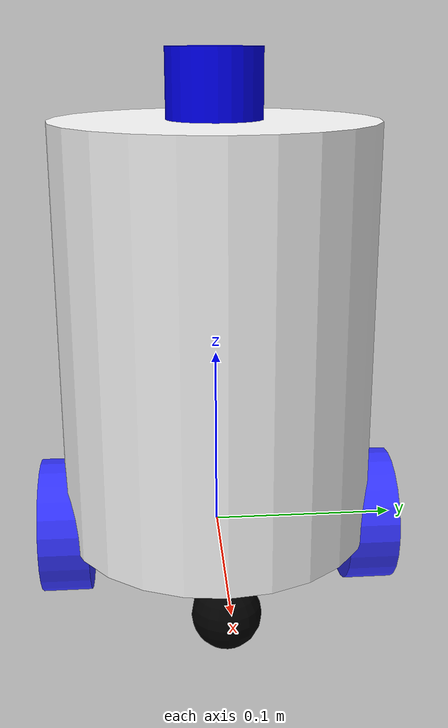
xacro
<?xml version="1.0"?>
<robot xmlns:xacro="http://www.ros.org/wiki/xacro" >

    <xacro:include filename="inertial_macros.xacro"/>

    <material name="white">
        <color rgba="1 1 1 1" />
    </material>

    <material name="orange">
        <color rgba="1 0.3 0.1 1"/>
    </material>

    <material name="blue">
        <color rgba="0.2 0.2 1 1"/>
    </material>

    <material name="black">
        <color rgba="0 0 0 1"/>
    </material>

    <link name="base_link">

    </link>

    <joint name="container_joint" type="fixed">
        <parent link="base_link"/>
        <child link="container"/>
        <origin xyz="-0.015 0 0.037"/>
    </joint>

    <link name="container">
        <visual>
            <origin xyz="0.015 0 0.075"/>
            <geometry>
                <cylinder radius="0.085" length="0.225"/>
            </geometry>
            <material name="white"/>
        </visual>
        <collision>
            <origin xyz="0.15 0 0.075"/>
            <geometry>
                <cylinder radius="0.085" length="0.225"/>
            </geometry>
        </collision>
        <xacro:inertial_box mass="0.5" x="0.3" y="0.3" z="0.15">
            <origin xyz="0.15 0 0.075" rpy="0 0 0"/>
        </xacro:inertial_box>
    </link>

    <!--lidar-->

    <joint name="lidarr_joint" type="fixed">
        <parent link="base_link"/>
        <child link="lidarr"/>
        <origin xyz="0 0 0.225" rpy="0 0 0"/>
    </joint>
        <link name="lidarr">
        <visual>
            <geometry>
                <cylinder radius="0.025" length="0.07"/>
            </geometry>
            <material name="blue">
                <color rgba="0.0 0.0 1.0 1.0"/>
            </material>
        </visual>
        <collision>
            <geometry>
                <cylinder radius="0.025" length="0.07"/>
            </geometry>
        </collision>
        <inertial>
            <mass value="0.2"/>
            <origin xyz="0 0 0.225" />
            <inertia ixx="0.01" ixy="0.0" ixz="0.0" iyy="0.01" iyz="0.0" izz="0.01"/>
        </inertial>
    </link>

    <!-- LEFT WHEEL LINK -->

    <joint name="left_wheel_joint" type="continuous">
        <parent link="base_link"/>
        <child link="left_wheel"/>
        <origin xyz="0 0.085 0" rpy="-${pi/2} 0 0" />
        <axis xyz="0 0 1"/>
    </joint>

    <link name="left_wheel">
        <visual>
            <geometry>
                <cylinder radius="0.037" length="0.027"/>
            </geometry>
            <material name="blue"/>
        </visual>
        <collision>
            <geometry>
                <cylinder radius="0.037" length="0.027"/>
            </geometry>
        </collision>
        <xacro:inertial_cylinder mass="0.01" length="0.027" radius="0.037">
            <origin xyz="0 0 0" rpy="0 0 0"/>
        </xacro:inertial_cylinder>
    </link>

    <!-- RIGHT WHEEL LINK -->

    <joint name="right_wheel_joint" type="continuous">
        <parent link="base_link"/>
        <child link="right_wheel"/>
        <origin xyz="0 -0.085 0" rpy="${pi/2} 0 0" />
        <axis xyz="0 0 -1"/>
    </joint>

    <link name="right_wheel">
        <visual>
            <geometry>
                <cylinder radius="0.037" length="0.027"/>
            </geometry>
            <material name="blue"/>
        </visual>
        <collision>
            <geometry>
                <cylinder radius="0.037" length="0.027"/>
            </geometry>
        </collision>
        <xacro:inertial_cylinder mass="0.1" length="0.027" radius="0.037">
            <origin xyz="0 0 0" rpy="0 0 0"/>
        </xacro:inertial_cylinder>
    </link>

    <!-- Support wheels LINKS -->

    <joint name="support_wheels_joint" type="fixed">
        <parent link="container"/>
        <child link="support_wheels"/>
        <origin xyz="0.085 0 -0.055"/>
    </joint>

    <link name="support_wheels">
        <visual>
            <geometry>
                <sphere radius="0.018"/>
            </geometry>
            <material name="black"/>
        </visual>
        <collision>
            <geometry>
                <sphere radius="0.018"/>
            </geometry>
        </collision>
        <xacro:inertial_sphere mass="0.1" radius="0.018">
            <origin xyz="0 0 0" rpy="0 0 0"/>
        </xacro:inertial_sphere>
    </link>

    <joint name="support_wheels_joint_back" type="fixed">
        <parent link="container"/>
        <child link="support_wheels_back"/>
        <origin xyz="-0.055 0 -0.055"/>
    </joint>

    <link name="support_wheels_back">
        <visual>
            <geometry>
                <sphere radius="0.018"/>
            </geometry>
            <material name="black"/>
        </visual>
        <collision>
            <geometry>
                <sphere radius="0.018"/>
            </geometry>
        </collision>
        <xacro:inertial_sphere mass="0.1" radius="0.018">
            <origin xyz="0 0 0" rpy="0 0 0"/>
        </xacro:inertial_sphere>
    </link>

</robot>
